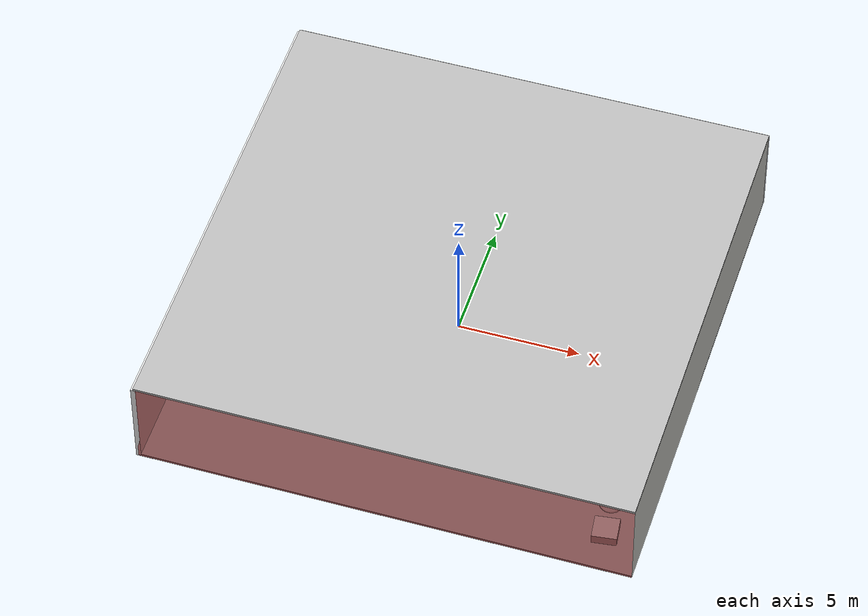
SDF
<sdf version="1.4">
 <world name="default">
  <physics type="ode">
   <max_step_size>0.001</max_step_size>
   <real_time_factor>1</real_time_factor>
   <real_time_update_rate>1000</real_time_update_rate>
   <gravity>0 0 -9.8</gravity>
  </physics>
  <scene><ambient>0.4 0.4 0.4 1</ambient><background>0.7 0.7 0.7 1</background><shadows>1</shadows></scene>
  <model name="Surrounding">
   <static>1</static>
   <link name="Ceiling">
    <collision name="Ceiling_Collision"><geometry><box><size>20 20 0.1</size></box></geometry></collision>
    <visual name="Ceiling_Visual">
     <geometry><box><size>20 20 0.1</size></box></geometry>
     <material>
      <script><uri>file://media/materials/scripts/gazebo.material</uri><name>Gazebo/LightOn</name></script>
     </material>
    </visual>
    <pose>0 0 4.05 0 0 0</pose>
   </link>
   <link name="Wall_South">
    <collision name="Wall_South_Collision">
     <geometry><box><size>20 0 4</size></box></geometry>
     <pose>0 0 2 0 -0 0</pose>
    </collision>
    <visual name="Wall_South_Visual">
     <pose>0 0 2 0 -0 0</pose>
     <geometry><box><size>20 0 4</size></box></geometry>
     <material>
      <script><uri>file://media/materials/scripts/gazebo.material</uri><name>Gazebo/RedTransparent</name></script>
     </material>
    </visual>
    <velocity_decay><linear>0</linear><angular>0</angular></velocity_decay>
    <pose>0 -10 0 0 -0 0</pose>
   </link>
   <link name="Wall_East">
    <collision name="Wall_21_Collision">
     <geometry><box><size>20 0 4</size></box></geometry>
     <pose>0 0 2 0 -0 0</pose>
    </collision>
    <visual name="Wall_21_Visual">
     <pose>0 0 2 0 -0 0</pose>
     <geometry><box><size>20 0 4</size></box></geometry>
     <material>
      <script><uri>file://media/materials/scripts/gazebo.material</uri><name>Gazebo/CeilingTiled</name></script>
     </material>
    </visual>
    <velocity_decay><linear>0</linear><angular>0</angular></velocity_decay>
    <pose>10 0 0 0 -0 1.5708</pose>
   </link>
   <link name="Wall_North">
    <collision name="Wall_22_Collision">
     <geometry><box><size>20 0.2 4</size></box></geometry>
     <pose>0 0 2 0 -0 0</pose>
    </collision>
    <visual name="Wall_22_Visual">
     <pose>0 0 2 0 -0 0</pose>
     <geometry><box><size>20 0.2 4</size></box></geometry>
     <material>
      <script><uri>file://media/materials/scripts/gazebo.material</uri><name>Gazebo/CloudySky</name></script>
     </material>
    </visual>
    <velocity_decay><linear>0</linear><angular>0</angular></velocity_decay>
    <pose>0 10 0 0 -0 0</pose>
   </link>
   <link name="Wall_West">
    <collision name="Wall_23_Collision">
     <geometry><box><size>20 0.2 4</size></box></geometry>
     <pose>0 0 2 0 -0 0</pose>
    </collision>
    <visual name="Wall_23_Visual">
     <pose>0 0 2 0 -0 0</pose>
     <geometry><box><size>20 0.2 4</size></box></geometry>
     <material>
      <script><uri>file://media/materials/scripts/gazebo.material</uri><name>Gazebo/White</name></script>
     </material>
    </visual>
    <velocity_decay><linear>0</linear><angular>0</angular></velocity_decay>
    <pose>-10 0 0 0 0 -1.5708</pose>
   </link>
   <link name="Ground_link">
    <collision name="collision">
     <pose>0 0 .05 0 -0 0</pose>
     <geometry><box><size>20 20 0.1</size></box></geometry>
    </collision>
    <visual name="visual">
     <pose>0 0 .05 0 -0 0</pose>
     <geometry><box><size>20 20 0.1</size></box></geometry>
     <material>
      <script><uri>file://media/materials/scripts/gazebo.material</uri><name>Gazebo/Grey</name></script>
     </material>
    </visual>
   </link>
   <static>1</static>
  </model>
  <spherical_coordinates>
   <surface_model>EARTH_WGS84</surface_model>
   <latitude_deg>0</latitude_deg>
   <longitude_deg>0</longitude_deg>
   <elevation>0</elevation>
   <heading_deg>0</heading_deg>
  </spherical_coordinates>
  <light name="lightball_0" type="diffuse">
   <diffuse>0.8 0.8 0.8 1</diffuse>
   <specular>0.2 0.2 0.2 1</specular>
   <attenuation>
    <range>100</range>
    <constant>0.7</constant>
    <linear>0.01</linear>
    <quadratic>0.001</quadratic>
   </attenuation>
   <direction>-0.5 0.1 -0.9</direction>
   <pose>-4.50940244496 -3.41692206328 2.77150085289 0 0 0</pose>
  </light>
  <light name="lightball_1" type="diffuse">
   <diffuse>0.8 0.8 0.8 1</diffuse>
   <specular>0.2 0.2 0.2 1</specular>
   <attenuation>
    <range>100</range>
    <constant>0.7</constant>
    <linear>0.01</linear>
    <quadratic>0.001</quadratic>
   </attenuation>
   <direction>-0.5 0.1 -0.9</direction>
   <pose>3.95733898549 6.18208225699 2.26106396799 0 0 0</pose>
  </light>
  <light name="lightball_2" type="diffuse">
   <diffuse>0.8 0.8 0.8 1</diffuse>
   <specular>0.2 0.2 0.2 1</specular>
   <attenuation>
    <range>100</range>
    <constant>0.7</constant>
    <linear>0.01</linear>
    <quadratic>0.001</quadratic>
   </attenuation>
   <direction>-0.5 0.1 -0.9</direction>
   <pose>-7.58692025354 5.13352695476 3.47156132832 0 0 0</pose>
  </light>
  <light name="lightball_3" type="diffuse">
   <diffuse>0.8 0.8 0.8 1</diffuse>
   <specular>0.2 0.2 0.2 1</specular>
   <attenuation>
    <range>100</range>
    <constant>0.7</constant>
    <linear>0.01</linear>
    <quadratic>0.001</quadratic>
   </attenuation>
   <direction>-0.5 0.1 -0.9</direction>
   <pose>8.20808142218 -6.33592239995 2.30133400988 0 0 0</pose>
  </light>
  <light name="lightball_4" type="diffuse">
   <diffuse>0.8 0.8 0.8 1</diffuse>
   <specular>0.2 0.2 0.2 1</specular>
   <attenuation>
    <range>100</range>
    <constant>0.7</constant>
    <linear>0.01</linear>
    <quadratic>0.001</quadratic>
   </attenuation>
   <direction>-0.5 0.1 -0.9</direction>
   <pose>-5.17711345022 -2.03122220314 3.56179388048 0 0 0</pose>
  </light>
  <light name="lightball_5" type="diffuse">
   <diffuse>0.8 0.8 0.8 1</diffuse>
   <specular>0.2 0.2 0.2 1</specular>
   <attenuation>
    <range>100</range>
    <constant>0.7</constant>
    <linear>0.01</linear>
    <quadratic>0.001</quadratic>
   </attenuation>
   <direction>-0.5 0.1 -0.9</direction>
   <pose>-6.55580719494 0.379094533544 2.07379840895 0 0 0</pose>
  </light>
  <light name="lightball_6" type="diffuse">
   <diffuse>0.8 0.8 0.8 1</diffuse>
   <specular>0.2 0.2 0.2 1</specular>
   <attenuation>
    <range>100</range>
    <constant>0.7</constant>
    <linear>0.01</linear>
    <quadratic>0.001</quadratic>
   </attenuation>
   <direction>-0.5 0.1 -0.9</direction>
   <pose>3.6975334918 5.85278957272 2.07744133247 0 0 0</pose>
  </light>
  <light name="lightball_7" type="diffuse">
   <diffuse>0.8 0.8 0.8 1</diffuse>
   <specular>0.2 0.2 0.2 1</specular>
   <attenuation>
    <range>100</range>
    <constant>0.7</constant>
    <linear>0.01</linear>
    <quadratic>0.001</quadratic>
   </attenuation>
   <direction>-0.5 0.1 -0.9</direction>
   <pose>-0.219279738649 1.97343353136 0.861068938956 0 0 0</pose>
  </light>
  <light name="lightball_8" type="diffuse">
   <diffuse>0.8 0.8 0.8 1</diffuse>
   <specular>0.2 0.2 0.2 1</specular>
   <attenuation>
    <range>100</range>
    <constant>0.7</constant>
    <linear>0.01</linear>
    <quadratic>0.001</quadratic>
   </attenuation>
   <direction>-0.5 0.1 -0.9</direction>
   <pose>5.5822414523 -2.06599116539 1.47853314669 0 0 0</pose>
  </light>
  <light name="lightball_9" type="diffuse">
   <diffuse>0.8 0.8 0.8 1</diffuse>
   <specular>0.2 0.2 0.2 1</specular>
   <attenuation>
    <range>100</range>
    <constant>0.7</constant>
    <linear>0.01</linear>
    <quadratic>0.001</quadratic>
   </attenuation>
   <direction>-0.5 0.1 -0.9</direction>
   <pose>7.35058128655 -9.47385260609 3.41896991279 0 0 0</pose>
  </light>
  <light name="lightball_10" type="diffuse">
   <diffuse>0.8 0.8 0.8 1</diffuse>
   <specular>0.2 0.2 0.2 1</specular>
   <attenuation>
    <range>100</range>
    <constant>0.7</constant>
    <linear>0.01</linear>
    <quadratic>0.001</quadratic>
   </attenuation>
   <direction>-0.5 0.1 -0.9</direction>
   <pose>7.32175144714 1.62683758846 0.680000674915 0 0 0</pose>
  </light>
  <include>
   <uri>model://robocup_3Dsim_goal</uri>
   <pose>-4.78676669137 4.45111301516 0 0 0 0.958045189412</pose>
  </include>
  <include><uri>model://cabinet</uri><pose>2.24496111844 4.39442833538 0 0 0 2.70593756523</pose></include>
  <include><uri>model://cabinet</uri><pose>4.34639539407 2.13976171509 0 0 0 0.133164769488</pose></include>
  <include>
   <uri>model://textured_shapes</uri>
   <pose>8.29663138718 -6.85942421178 0 0 0 0.126998580206</pose>
  </include>
  <include>
   <uri>model://textured_shapes</uri>
   <pose>6.95212875235 1.92789501503 0 0 0 0.51776803614</pose>
  </include>
 </world>
</sdf>

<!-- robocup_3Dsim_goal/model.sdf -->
<sdf version="1.5">
  <model name="robocup_3d_goal">
    <static>true</static>
    <link name="left_post">
      <pose>0 1.05 0.45 0 0 0</pose>
      <collision name="collision">
        <geometry>
          <cylinder>
            <radius>0.05</radius>
            <length>0.9</length>
          </cylinder>
        </geometry>
      </collision>
      <visual name="visual">
        <geometry>
          <cylinder>
            <radius>0.05</radius>
            <length>0.9</length>
          </cylinder>
        </geometry>
        <material>
          <script>
            <uri>file://media/materials/scripts/gazebo.material</uri>
            <name>Gazebo/ZincYellow</name>
          </script>
        </material>
      </visual>
    </link>
    <link name="left_support_horiz_lower">
      <pose>0.30 1.05 0.01 0 0 0</pose>
      <collision name="collision">
        <geometry>
          <box>
            <size>0.50 0.02 0.02</size>
          </box>
        </geometry>
      </collision>
      <visual name="visual">
        <geometry>
          <box>
            <size>0.50 0.02 0.02</size>
          </box>
        </geometry>
        <material>
          <script>
            <uri>file://media/materials/scripts/gazebo.material</uri>
            <name>Gazebo/White</name>
          </script>
        </material>
      </visual>
    </link>
    <link name="left_support_horiz_upper">
      <pose>0.30 1.05 0.79 0 0 0</pose>
      <collision name="collision">
        <geometry>
          <box>
            <size>0.50 0.02 0.02</size>
          </box>
        </geometry>
      </collision>
      <visual name="visual">
        <geometry>
          <box>
            <size>0.50 0.02 0.02</size>
          </box>
        </geometry>
        <material>
          <script>
            <uri>file://media/materials/scripts/gazebo.material</uri>
            <name>Gazebo/White</name>
          </script>
        </material>
      </visual>
    </link>
    <link name="left_support_vertical">
      <pose>0.56 1.05 0.4 0 1.5708 0</pose>
      <collision name="collision">
        <geometry>
          <box>
            <size>0.80 0.02 0.02</size>
          </box>
        </geometry>
      </collision>
      <visual name="visual">
        <geometry>
          <box>
            <size>0.80 0.02 0.02</size>
          </box>
        </geometry>
        <material>
          <script>
            <uri>file://media/materials/scripts/gazebo.material</uri>
            <name>Gazebo/White</name>
          </script>
        </material>
      </visual>
    </link>
    <link name="right_support_horiz_lower">
      <pose>0.30 -1.05 0.01 0 0 0</pose>
      <collision name="collision">
        <geometry>
          <box>
            <size>0.50 0.02 0.02</size>
          </box>
        </geometry>
      </collision>
      <visual name="visual">
        <geometry>
          <box>
            <size>0.50 0.02 0.02</size>
          </box>
        </geometry>
        <material>
          <script>
            <uri>file://media/materials/scripts/gazebo.material</uri>
            <name>Gazebo/White</name>
          </script>
        </material>
      </visual>
    </link>
    <link name="right_support_horiz_upper">
      <pose>0.30 -1.05 0.79 0 0 0</pose>
      <collision name="collision">
        <geometry>
          <box>
            <size>0.50 0.02 0.02</size>
          </box>
        </geometry>
      </collision>
      <visual name="visual">
        <geometry>
          <box>
            <size>0.50 0.02 0.02</size>
          </box>
        </geometry>
        <material>
          <script>
            <uri>file://media/materials/scripts/gazebo.material</uri>
            <name>Gazebo/White</name>
          </script>
        </material>
      </visual>
    </link>
    <link name="right_support_vertical">
      <pose>0.56 -1.05 0.4 0 1.5708 0</pose>
      <collision name="collision">
        <geometry>
          <box>
            <size>0.80 0.02 0.02</size>
          </box>
        </geometry>
      </collision>
      <visual name="visual">
        <geometry>
          <box>
            <size>0.80 0.02 0.02</size>
          </box>
        </geometry>
        <material>
          <script>
            <uri>file://media/materials/scripts/gazebo.material</uri>
            <name>Gazebo/White</name>
          </script>
        </material>
      </visual>
    </link>
    <link name="center_support_horiz_lower">
      <pose>0.56 0 0.01 0 1.5708 0</pose>
      <collision name="collision">
        <geometry>
          <box>
            <size>0.02 2.08 0.02</size>
          </box>
        </geometry>
      </collision>
      <visual name="visual">
        <geometry>
          <box>
            <size>0.02 2.08 0.02</size>
          </box>
        </geometry>
        <material>
          <script>
            <uri>file://media/materials/scripts/gazebo.material</uri>
            <name>Gazebo/White</name>
          </script>
        </material>
      </visual>
    </link>
    <link name="center_support_horiz_upper">
      <pose>0.56 0 0.79 0 1.5708 0</pose>
      <collision name="collision">
        <geometry>
          <box>
            <size>0.02 2.08 0.02</size>
          </box>
        </geometry>
      </collision>
      <visual name="visual">
        <geometry>
          <box>
            <size>0.02 2.08 0.02</size>
          </box>
        </geometry>
        <material>
          <script>
            <uri>file://media/materials/scripts/gazebo.material</uri>
            <name>Gazebo/White</name>
          </script>
        </material>
      </visual>
    </link>
    <link name="right_post">
      <pose>0 -1.05 0.45 0 0 0</pose>
      <collision name="collision">
        <geometry>
          <cylinder>
            <radius>0.05</radius>
            <length>0.9</length>
          </cylinder>
        </geometry>
      </collision>
      <visual name="visual">
        <geometry>
          <cylinder>
            <radius>0.05</radius>
            <length>0.9</length>
          </cylinder>
        </geometry>
        <material>
          <script>
            <uri>file://media/materials/scripts/gazebo.material</uri>
            <name>Gazebo/ZincYellow</name>
          </script>
        </material>
      </visual>
    </link>
    <link name="crossbar">
      <pose>0 0 0.85 1.57 1.57 0</pose>
      <collision name="collision">
        <geometry>
          <cylinder>
            <radius>0.05</radius>
            <length>2.0</length>
          </cylinder>
        </geometry>
      </collision>
      <visual name="visual">
        <geometry>
          <cylinder>
            <radius>0.05</radius>
            <length>2.0</length>
          </cylinder>
        </geometry>
        <material>
          <script>
            <uri>file://media/materials/scripts/gazebo.material</uri>
            <name>Gazebo/ZincYellow</name>
          </script>
        </material>
      </visual>
    </link>
    <link name="center_net">
      <pose>0.56 0 0.40 0 0 0</pose>
      <collision name="collision">
        <geometry>
          <box>
            <size>0.01 2.1 0.80</size>
          </box>
        </geometry>
      </collision>
      <visual name="visual">
        <geometry>
          <box>
            <size>0.01 2.1 0.80</size>
          </box>
        </geometry>
        <material>
          <script>
            <uri>model://../model_source/models/robocup09_spl_field/materials/scripts/</uri>
            <uri>model://../model_source/models/robocup09_spl_field/materials/textures/</uri>
            <name>RoboCup/Net</name>
          </script>
        </material>
      </visual>
    </link>
    <link name="left_net">
      <pose>0.30 1.05 0.40 0 0 0</pose>
      <collision name="collision">
        <geometry>
          <box>
            <size>0.50 0.01 0.76</size>
          </box>
        </geometry>
      </collision>
      <visual name="visual">
        <geometry>
          <box>
            <size>0.50 0.01 0.76</size>
          </box>
        </geometry>
        <material>
          <script>
            <uri>model://../model_source/models/robocup09_spl_field/materials/scripts/</uri>
            <uri>model://../model_source/models/robocup09_spl_field/materials/textures/</uri>
            <name>RoboCup/Net</name>
          </script>
        </material>
      </visual>
    </link>
    <link name="right_net">
      <pose>0.30 -1.05 0.40 0 0 0</pose>
      <collision name="collision">
        <geometry>
          <box>
            <size>0.50 0.01 0.76</size>
          </box>
        </geometry>
      </collision>
      <visual name="visual">
        <geometry>
          <box>
            <size>0.50 0.01 0.76</size>
          </box>
        </geometry>
        <material>
          <script>
            <uri>model://../model_source/models/robocup09_spl_field/materials/scripts/</uri>
            <uri>model://../model_source/models/robocup09_spl_field/materials/textures/</uri>
            <name>RoboCup/Net</name>
          </script>
        </material>
      </visual>
    </link>
  </model>
</sdf>

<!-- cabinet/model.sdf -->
<sdf version="1.5">
  <model name="cabinet">
    <static>true</static>
    <link name="cabinet_bottom_plate">
      <inertial>
        <pose>0 0 -1 0 0 0</pose>
        <inertia>
          <ixx>2.050000</ixx>
          <ixy>0</ixy>
          <ixz>0</ixz>
          <iyy>2.050000</iyy>
          <iyz>0</iyz>
          <izz>2.050000</izz>
        </inertia>
        <mass>25.000000</mass>
      </inertial>
      <collision name="cabinet_bottom_plate_geom">
        <pose>0 0 0.010000 0 0 0</pose>
        <geometry>
          <box>
            <size>0.450000 0.450000 0.020000</size>
          </box>
        </geometry>
      </collision>
      <visual name="cabinet_bottom_plate_geom_visual">
        <pose>0 0 0.010000 0 0 0</pose>
        <geometry>
          <box>
            <size>0.450000 0.450000 0.020000</size>
          </box>
        </geometry>
        <material>
          <script>
            <uri>model://media/materials/scripts/gazebo.material</uri>
            <name>Gazebo/Wood</name>
          </script>
        </material>
      </visual>
      <collision name="cabinet_bottom_plate_geom_cabinet_back_plate">
        <pose>0.235000 0 0.510000 0 0 0</pose>
        <geometry>
          <box>
            <size>0.020000 0.450000 1.020000</size>
          </box>
        </geometry>
      </collision>
      <visual name="cabinet_bottom_plate_geom_cabinet_back_plate_visual">
        <pose>0.235000 0 0.510000 0 0 0</pose>
        <geometry>
          <box>
            <size>0.020000 0.450000 1.020000</size>
          </box>
        </geometry>
        <material>
          <script>
            <uri>model://media/materials/scripts/gazebo.material</uri>
            <name>Gazebo/Wood</name>
          </script>
        </material>
      </visual>
      <collision name="cabinet_bottom_plate_geom_cabinet_left_plate">
        <pose>0 0.235000 0.510000 0 0 0</pose>
        <geometry>
          <box>
            <size>0.450000 0.020000 1.020000</size>
          </box>
        </geometry>
      </collision>
      <visual name="cabinet_bottom_plate_geom_cabinet_left_plate_visual">
        <pose>0 0.235000 0.510000 0 0 0</pose>
        <geometry>
          <box>
            <size>0.450000 0.020000 1.020000</size>
          </box>
        </geometry>
        <material>
          <script>
            <uri>model://media/materials/scripts/gazebo.material</uri>
            <name>Gazebo/Wood</name>
          </script>
        </material>
      </visual>
      <collision name="cabinet_bottom_plate_geom_cabinet_middle_plate">
        <pose>0 0 0.510000 0 0 0</pose>
        <geometry>
          <box>
            <size>0.450000 0.450000 0.020000</size>
          </box>
        </geometry>
      </collision>
      <visual name="cabinet_bottom_plate_geom_cabinet_middle_plate_visual">
        <pose>0 0 0.510000 0 0 0</pose>
        <geometry>
          <box>
            <size>0.450000 0.450000 0.020000</size>
          </box>
        </geometry>
        <material>
          <script>
            <uri>model://media/materials/scripts/gazebo.material</uri>
            <name>Gazebo/Wood</name>
          </script>
        </material>
      </visual>
      <collision name="cabinet_bottom_plate_geom_cabinet_right_plate">
        <pose>0 -0.235000 0.510000 0 0 0</pose>
        <geometry>
          <box>
            <size>0.450000 0.020000 1.020000</size>
          </box>
        </geometry>
      </collision>
      <visual name="cabinet_bottom_plate_geom_cabinet_right_plate_visual">
        <pose>0 -0.235000 0.510000 0 0 0</pose>
        <geometry>
          <box>
            <size>0.450000 0.020000 1.020000</size>
          </box>
        </geometry>
        <material>
          <script>
            <uri>model://media/materials/scripts/gazebo.material</uri>
            <name>Gazebo/Wood</name>
          </script>
        </material>
      </visual>
      <collision name="cabinet_bottom_plate_geom_cabinet_top_plate">
        <pose>0 0 1.010000 0 0 0</pose>
        <geometry>
          <box>
            <size>0.450000 0.450000 0.020000</size>
          </box>
        </geometry>
      </collision>
      <visual name="cabinet_bottom_plate_geom_cabinet_top_plate_visual">
        <pose>0 0 1.010000 0 0 0</pose>
        <geometry>
          <box>
            <size>0.450000 0.450000 0.020000</size>
          </box>
        </geometry>
        <material>
          <script>
            <uri>model://media/materials/scripts/gazebo.material</uri>
            <name>Gazebo/Wood</name>
          </script>
        </material>
      </visual>
    </link>
  </model>
</sdf>

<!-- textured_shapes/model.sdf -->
<sdf version="1.6">
  <model name="textured_shapes">
    <pose>0 0 0.5 0 0 0</pose>
    <link name="box">
      <pose>0 -1.5 0 0 0 0</pose>
      <collision name="collision">
        <geometry>
          <box>
            <size>1 1 1</size>
          </box>
        </geometry>
      </collision>
      <visual name="visual">
        <geometry>
          <box>
            <size>1 1 1</size>
          </box>
        </geometry>
        <material>
          <script>
            <uri>model://../model_source/models/textured_shapes/materials/scripts</uri>
            <uri>model://../model_source/models/textured_shapes/materials/textures</uri>
            <name>TexturedShape/Squares</name>
          </script>
        </material>
      </visual>
    </link>
    <link name="sphere">
      <collision name="collision">
        <geometry>
          <sphere>
            <radius>0.5</radius>
          </sphere>
        </geometry>
      </collision>
      <visual name="visual">
        <geometry>
          <sphere>
            <radius>0.5</radius>
          </sphere>
        </geometry>
        <material>
          <script>
            <uri>model://../model_source/models/textured_shapes/materials/scripts</uri>
            <uri>model://../model_source/models/textured_shapes/materials/textures</uri>
            <name>TexturedShape/Squares</name>
          </script>
        </material>
      </visual>
    </link>
    <link name="cylinder">
      <pose>0 1.5 0 0 0 0</pose>
      <collision name="collision">
        <geometry>
          <cylinder>
            <radius>0.5</radius>
            <length>1</length>
          </cylinder>
        </geometry>
      </collision>
      <visual name="visual">
        <geometry>
          <cylinder>
            <radius>0.5</radius>
            <length>1</length>
          </cylinder>
        </geometry>
        <material>
          <script>
            <uri>model://../model_source/models/textured_shapes/materials/scripts</uri>
            <uri>model://../model_source/models/textured_shapes/materials/textures</uri>
            <name>TexturedShape/Squares</name>
          </script>
        </material>
      </visual>
    </link>
  </model>
</sdf>
